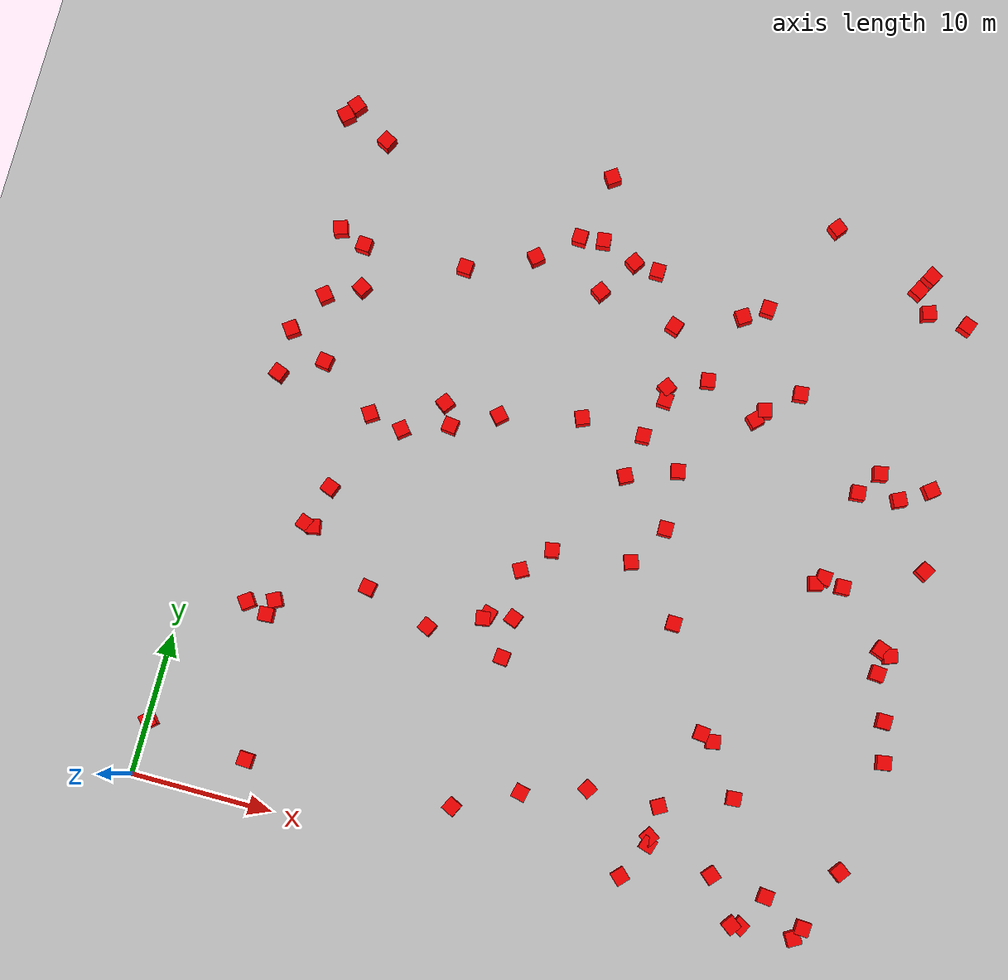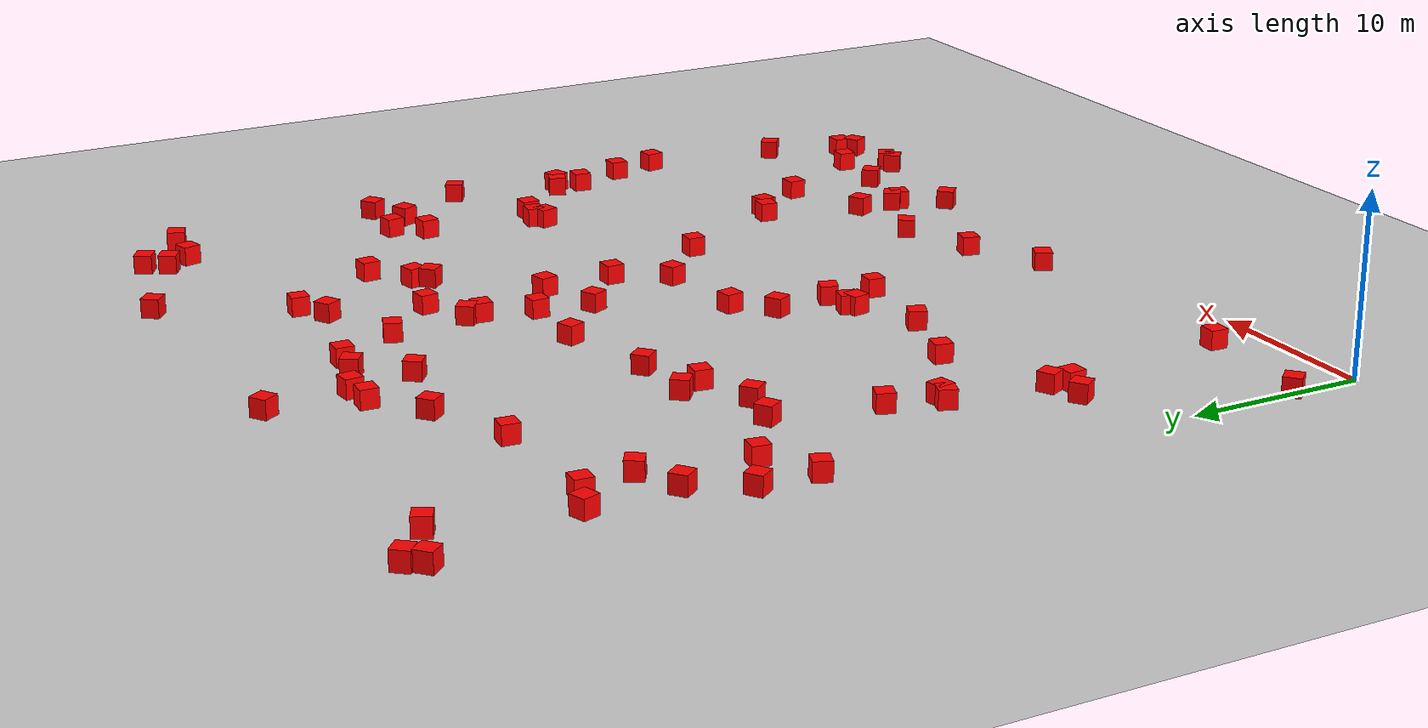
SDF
<sdf version="1.5">
 <world name="default">
  <light name="sun" type="directional">
   <pose>0 0 10 0 -0 0</pose>
   <diffuse>0.8 0.8 0.8 1</diffuse>
   <specular>0.2 0.2 0.2 1</specular>
   <attenuation>
    <range>1000</range>
    <constant>0.9</constant>
    <linear>0.01</linear>
    <quadratic>0.001</quadratic>
   </attenuation>
   <direction>0 0.5 -0.9</direction>
  </light>
  <light name="point_light" type="point">
   <pose>0 -0.377195 6.59868 0 -0 0</pose>
   <diffuse>0.784314 0.784314 0.784314 1</diffuse>
   <specular>0.0980392 0.0980392 0.0980392 1</specular>
   <attenuation>
    <range>50</range>
    <constant>0.8</constant>
    <linear>0</linear>
    <quadratic>0.001</quadratic>
   </attenuation>
   <cast_shadows>0</cast_shadows>
   <direction>0 0 -1</direction>
  </light>
  <include><uri>model://ground_plane</uri></include>
  <model name="pink_obstacle_0">
   <static>true</static>
   <link name="link">
    <visual name="visual">
     <geometry><box><size>1.000000 1.000000 2.000000</size></box></geometry>
     <material><ambient>1 0 0 1</ambient><diffuse>1 0 0 1</diffuse></material>
    </visual>
   </link>
   <pose>46.714055 0.924141 0.000000 0.000000 0.000000 0.515072</pose>
  </model>
  <model name="pink_obstacle_1">
   <static>true</static>
   <link name="link">
    <visual name="visual">
     <geometry><box><size>1.000000 1.000000 2.000000</size></box></geometry>
     <material><ambient>1 0 0 1</ambient><diffuse>1 0 0 1</diffuse></material>
    </visual>
   </link>
   <pose>3.766965 35.918104 0.000000 0.000000 0.000000 0.670244</pose>
  </model>
  <model name="pink_obstacle_2">
   <static>true</static>
   <link name="link">
    <visual name="visual">
     <geometry><box><size>1.000000 1.000000 2.000000</size></box></geometry>
     <material><ambient>1 0 0 1</ambient><diffuse>1 0 0 1</diffuse></material>
    </visual>
   </link>
   <pose>7.475500 19.732397 0.000000 0.000000 0.000000 0.172958</pose>
  </model>
  <model name="pink_obstacle_3">
   <static>true</static>
   <link name="link">
    <visual name="visual">
     <geometry><box><size>1.000000 1.000000 2.000000</size></box></geometry>
     <material><ambient>1 0 0 1</ambient><diffuse>1 0 0 1</diffuse></material>
    </visual>
   </link>
   <pose>28.218341 31.873527 0.000000 0.000000 0.000000 0.025634</pose>
  </model>
  <model name="pink_obstacle_4">
   <static>true</static>
   <link name="link">
    <visual name="visual">
     <geometry><box><size>1.000000 1.000000 2.000000</size></box></geometry>
     <material><ambient>1 0 0 1</ambient><diffuse>1 0 0 1</diffuse></material>
    </visual>
   </link>
   <pose>38.230350 37.607334 0.000000 0.000000 0.000000 0.091677</pose>
  </model>
  <model name="pink_obstacle_5">
   <static>true</static>
   <link name="link">
    <visual name="visual">
     <geometry><box><size>1.000000 1.000000 2.000000</size></box></geometry>
     <material><ambient>1 0 0 1</ambient><diffuse>1 0 0 1</diffuse></material>
    </visual>
   </link>
   <pose>40.298660 3.570914 0.000000 0.000000 0.000000 0.847894</pose>
  </model>
  <model name="pink_obstacle_6">
   <static>true</static>
   <link name="link">
    <visual name="visual">
     <geometry><box><size>1.000000 1.000000 2.000000</size></box></geometry>
     <material><ambient>1 0 0 1</ambient><diffuse>1 0 0 1</diffuse></material>
    </visual>
   </link>
   <pose>35.565850 4.997576 0.000000 0.000000 0.000000 0.971486</pose>
  </model>
  <model name="pink_obstacle_7">
   <static>true</static>
   <link name="link">
    <visual name="visual">
     <geometry><box><size>1.000000 1.000000 2.000000</size></box></geometry>
     <material><ambient>1 0 0 1</ambient><diffuse>1 0 0 1</diffuse></material>
    </visual>
   </link>
   <pose>48.721569 33.250506 0.000000 0.000000 0.000000 0.629780</pose>
  </model>
  <model name="pink_obstacle_8">
   <static>true</static>
   <link name="link">
    <visual name="visual">
     <geometry><box><size>1.000000 1.000000 2.000000</size></box></geometry>
     <material><ambient>1 0 0 1</ambient><diffuse>1 0 0 1</diffuse></material>
    </visual>
   </link>
   <pose>36.043508 35.787292 0.000000 0.000000 0.000000 0.249717</pose>
  </model>
  <model name="pink_obstacle_9">
   <static>true</static>
   <link name="link">
    <visual name="visual">
     <geometry><box><size>1.000000 1.000000 2.000000</size></box></geometry>
     <material><ambient>1 0 0 1</ambient><diffuse>1 0 0 1</diffuse></material>
    </visual>
   </link>
   <pose>11.618465 27.958165 0.000000 0.000000 0.000000 0.670215</pose>
  </model>
  <model name="pink_obstacle_10">
   <static>true</static>
   <link name="link">
    <visual name="visual">
     <geometry><box><size>1.000000 1.000000 2.000000</size></box></geometry>
     <material><ambient>1 0 0 1</ambient><diffuse>1 0 0 1</diffuse></material>
    </visual>
   </link>
   <pose>6.013086 12.966785 0.000000 0.000000 0.000000 0.048870</pose>
  </model>
  <model name="pink_obstacle_11">
   <static>true</static>
   <link name="link">
    <visual name="visual">
     <geometry><box><size>1.000000 1.000000 2.000000</size></box></geometry>
     <material><ambient>1 0 0 1</ambient><diffuse>1 0 0 1</diffuse></material>
    </visual>
   </link>
   <pose>43.800302 31.783755 0.000000 0.000000 0.000000 0.077478</pose>
  </model>
  <model name="pink_obstacle_12">
   <static>true</static>
   <link name="link">
    <visual name="visual">
     <geometry><box><size>1.000000 1.000000 2.000000</size></box></geometry>
     <material><ambient>1 0 0 1</ambient><diffuse>1 0 0 1</diffuse></material>
    </visual>
   </link>
   <pose>5.493710 40.161034 0.000000 0.000000 0.000000 1.498785</pose>
  </model>
  <model name="pink_obstacle_13">
   <static>true</static>
   <link name="link">
    <visual name="visual">
     <geometry><box><size>1.000000 1.000000 2.000000</size></box></geometry>
     <material><ambient>1 0 0 1</ambient><diffuse>1 0 0 1</diffuse></material>
    </visual>
   </link>
   <pose>48.748871 6.018786 0.000000 0.000000 0.000000 0.916541</pose>
  </model>
  <model name="pink_obstacle_14">
   <static>true</static>
   <link name="link">
    <visual name="visual">
     <geometry><box><size>1.000000 1.000000 2.000000</size></box></geometry>
     <material><ambient>1 0 0 1</ambient><diffuse>1 0 0 1</diffuse></material>
    </visual>
   </link>
   <pose>29.633983 22.997522 0.000000 0.000000 0.000000 0.311947</pose>
  </model>
  <model name="pink_obstacle_15">
   <static>true</static>
   <link name="link">
    <visual name="visual">
     <geometry><box><size>1.000000 1.000000 2.000000</size></box></geometry>
     <material><ambient>1 0 0 1</ambient><diffuse>1 0 0 1</diffuse></material>
    </visual>
   </link>
   <pose>6.186903 37.091109 0.000000 0.000000 0.000000 1.025067</pose>
  </model>
  <model name="pink_obstacle_16">
   <static>true</static>
   <link name="link">
    <visual name="visual">
     <geometry><box><size>1.000000 1.000000 2.000000</size></box></geometry>
     <material><ambient>1 0 0 1</ambient><diffuse>1 0 0 1</diffuse></material>
    </visual>
   </link>
   <pose>2.130829 29.661651 0.000000 0.000000 0.000000 1.212941</pose>
  </model>
  <model name="pink_obstacle_17">
   <static>true</static>
   <link name="link">
    <visual name="visual">
     <geometry><box><size>1.000000 1.000000 2.000000</size></box></geometry>
     <material><ambient>1 0 0 1</ambient><diffuse>1 0 0 1</diffuse></material>
    </visual>
   </link>
   <pose>48.469944 45.380719 0.000000 0.000000 0.000000 1.199917</pose>
  </model>
  <model name="pink_obstacle_18">
   <static>true</static>
   <link name="link">
    <visual name="visual">
     <geometry><box><size>1.000000 1.000000 2.000000</size></box></geometry>
     <material><ambient>1 0 0 1</ambient><diffuse>1 0 0 1</diffuse></material>
    </visual>
   </link>
   <pose>34.306627 1.921542 0.000000 0.000000 0.000000 0.805042</pose>
  </model>
  <model name="pink_obstacle_19">
   <static>true</static>
   <link name="link">
    <visual name="visual">
     <geometry><box><size>1.000000 1.000000 2.000000</size></box></geometry>
     <material><ambient>1 0 0 1</ambient><diffuse>1 0 0 1</diffuse></material>
    </visual>
   </link>
   <pose>24.086724 22.381701 0.000000 0.000000 0.000000 0.162172</pose>
  </model>
  <model name="pink_obstacle_20">
   <static>true</static>
   <link name="link">
    <visual name="visual">
     <geometry><box><size>1.000000 1.000000 2.000000</size></box></geometry>
     <material><ambient>1 0 0 1</ambient><diffuse>1 0 0 1</diffuse></material>
    </visual>
   </link>
   <pose>28.389633 40.057751 0.000000 0.000000 0.000000 1.239587</pose>
  </model>
  <model name="pink_obstacle_21">
   <static>true</static>
   <link name="link">
    <visual name="visual">
     <geometry><box><size>1.000000 1.000000 2.000000</size></box></geometry>
     <material><ambient>1 0 0 1</ambient><diffuse>1 0 0 1</diffuse></material>
    </visual>
   </link>
   <pose>31.377544 25.873694 0.000000 0.000000 0.000000 0.002540</pose>
  </model>
  <model name="pink_obstacle_22">
   <static>true</static>
   <link name="link">
    <visual name="visual">
     <geometry><box><size>1.000000 1.000000 2.000000</size></box></geometry>
     <material><ambient>1 0 0 1</ambient><diffuse>1 0 0 1</diffuse></material>
    </visual>
   </link>
   <pose>33.569751 19.589406 0.000000 0.000000 0.000000 1.543019</pose>
  </model>
  <model name="pink_obstacle_23">
   <static>true</static>
   <link name="link">
    <visual name="visual">
     <geometry><box><size>1.000000 1.000000 2.000000</size></box></geometry>
     <material><ambient>1 0 0 1</ambient><diffuse>1 0 0 1</diffuse></material>
    </visual>
   </link>
   <pose>9.189827 28.485367 0.000000 0.000000 0.000000 0.572823</pose>
  </model>
  <model name="pink_obstacle_24">
   <static>true</static>
   <link name="link">
    <visual name="visual">
     <geometry><box><size>1.000000 1.000000 2.000000</size></box></geometry>
     <material><ambient>1 0 0 1</ambient><diffuse>1 0 0 1</diffuse></material>
    </visual>
   </link>
   <pose>37.890776 49.964936 0.000000 0.000000 0.000000 0.902124</pose>
  </model>
  <model name="pink_obstacle_25">
   <static>true</static>
   <link name="link">
    <visual name="visual">
     <geometry><box><size>1.000000 1.000000 2.000000</size></box></geometry>
     <material><ambient>1 0 0 1</ambient><diffuse>1 0 0 1</diffuse></material>
    </visual>
   </link>
   <pose>21.954326 44.828901 0.000000 0.000000 0.000000 0.109536</pose>
  </model>
  <model name="pink_obstacle_26">
   <static>true</static>
   <link name="link">
    <visual name="visual">
     <geometry><box><size>1.000000 1.000000 2.000000</size></box></geometry>
     <material><ambient>1 0 0 1</ambient><diffuse>1 0 0 1</diffuse></material>
    </visual>
   </link>
   <pose>26.239358 43.642397 0.000000 0.000000 0.000000 1.543481</pose>
  </model>
  <model name="pink_obstacle_27">
   <static>true</static>
   <link name="link">
    <visual name="visual">
     <geometry><box><size>1.000000 1.000000 2.000000</size></box></geometry>
     <material><ambient>1 0 0 1</ambient><diffuse>1 0 0 1</diffuse></material>
    </visual>
   </link>
   <pose>34.528546 43.002833 0.000000 0.000000 0.000000 1.505570</pose>
  </model>
  <model name="pink_obstacle_28">
   <static>true</static>
   <link name="link">
    <visual name="visual">
     <geometry><box><size>1.000000 1.000000 2.000000</size></box></geometry>
     <material><ambient>1 0 0 1</ambient><diffuse>1 0 0 1</diffuse></material>
    </visual>
   </link>
   <pose>45.614633 45.600654 0.000000 0.000000 0.000000 0.271461</pose>
  </model>
  <model name="pink_obstacle_29">
   <static>true</static>
   <link name="link">
    <visual name="visual">
     <geometry><box><size>1.000000 1.000000 2.000000</size></box></geometry>
     <material><ambient>1 0 0 1</ambient><diffuse>1 0 0 1</diffuse></material>
    </visual>
   </link>
   <pose>38.213255 12.392197 0.000000 0.000000 0.000000 0.170657</pose>
  </model>
  <model name="pink_obstacle_30">
   <static>true</static>
   <link name="link">
    <visual name="visual">
     <geometry><box><size>1.000000 1.000000 2.000000</size></box></geometry>
     <material><ambient>1 0 0 1</ambient><diffuse>1 0 0 1</diffuse></material>
    </visual>
   </link>
   <pose>26.270959 5.646057 0.000000 0.000000 0.000000 1.343711</pose>
  </model>
  <model name="pink_obstacle_31">
   <static>true</static>
   <link name="link">
    <visual name="visual">
     <geometry><box><size>1.000000 1.000000 2.000000</size></box></geometry>
     <material><ambient>1 0 0 1</ambient><diffuse>1 0 0 1</diffuse></material>
    </visual>
   </link>
   <pose>44.995047 33.497483 0.000000 0.000000 0.000000 0.171649</pose>
  </model>
  <model name="pink_obstacle_32">
   <static>true</static>
   <link name="link">
    <visual name="visual">
     <geometry><box><size>1.000000 1.000000 2.000000</size></box></geometry>
     <material><ambient>1 0 0 1</ambient><diffuse>1 0 0 1</diffuse></material>
    </visual>
   </link>
   <pose>30.673199 7.057635 0.000000 0.000000 0.000000 1.008725</pose>
  </model>
  <model name="pink_obstacle_33">
   <static>true</static>
   <link name="link">
    <visual name="visual">
     <geometry><box><size>1.000000 1.000000 2.000000</size></box></geometry>
     <material><ambient>1 0 0 1</ambient><diffuse>1 0 0 1</diffuse></material>
    </visual>
   </link>
   <pose>14.882845 29.099922 0.000000 0.000000 0.000000 1.444165</pose>
  </model>
  <model name="pink_obstacle_34">
   <static>true</static>
   <link name="link">
    <visual name="visual">
     <geometry><box><size>1.000000 1.000000 2.000000</size></box></geometry>
     <material><ambient>1 0 0 1</ambient><diffuse>1 0 0 1</diffuse></material>
    </visual>
   </link>
   <pose>44.245102 3.132169 0.000000 0.000000 0.000000 1.464915</pose>
  </model>
  <model name="pink_obstacle_35">
   <static>true</static>
   <link name="link">
    <visual name="visual">
     <geometry><box><size>1.000000 1.000000 2.000000</size></box></geometry>
     <material><ambient>1 0 0 1</ambient><diffuse>1 0 0 1</diffuse></material>
    </visual>
   </link>
   <pose>48.622352 21.224300 0.000000 0.000000 0.000000 0.298839</pose>
  </model>
  <model name="pink_obstacle_36">
   <static>true</static>
   <link name="link">
    <visual name="visual">
     <geometry><box><size>1.000000 1.000000 2.000000</size></box></geometry>
     <material><ambient>1 0 0 1</ambient><diffuse>1 0 0 1</diffuse></material>
    </visual>
   </link>
   <pose>0.157791 3.839870 0.000000 0.000000 0.000000 0.723013</pose>
  </model>
  <model name="pink_obstacle_37">
   <static>true</static>
   <link name="link">
    <visual name="visual">
     <geometry><box><size>1.000000 1.000000 2.000000</size></box></geometry>
     <material><ambient>1 0 0 1</ambient><diffuse>1 0 0 1</diffuse></material>
    </visual>
   </link>
   <pose>35.558248 34.979017 0.000000 0.000000 0.000000 0.773034</pose>
  </model>
  <model name="pink_obstacle_38">
   <static>true</static>
   <link name="link">
    <visual name="visual">
     <geometry><box><size>1.000000 1.000000 2.000000</size></box></geometry>
     <material><ambient>1 0 0 1</ambient><diffuse>1 0 0 1</diffuse></material>
    </visual>
   </link>
   <pose>37.311109 12.733483 0.000000 0.000000 0.000000 1.468015</pose>
  </model>
  <model name="pink_obstacle_39">
   <static>true</static>
   <link name="link">
    <visual name="visual">
     <geometry><box><size>1.000000 1.000000 2.000000</size></box></geometry>
     <material><ambient>1 0 0 1</ambient><diffuse>1 0 0 1</diffuse></material>
    </visual>
   </link>
   <pose>17.578345 42.427796 0.000000 0.000000 0.000000 0.695136</pose>
  </model>
  <model name="pink_obstacle_40">
   <static>true</static>
   <link name="link">
    <visual name="visual">
     <geometry><box><size>1.000000 1.000000 2.000000</size></box></geometry>
     <material><ambient>1 0 0 1</ambient><diffuse>1 0 0 1</diffuse></material>
    </visual>
   </link>
   <pose>7.890580 22.698709 0.000000 0.000000 0.000000 1.200527</pose>
  </model>
  <model name="pink_obstacle_41">
   <static>true</static>
   <link name="link">
    <visual name="visual">
     <geometry><box><size>1.000000 1.000000 2.000000</size></box></geometry>
     <material><ambient>1 0 0 1</ambient><diffuse>1 0 0 1</diffuse></material>
    </visual>
   </link>
   <pose>49.275049 16.746077 0.000000 0.000000 0.000000 1.556272</pose>
  </model>
  <model name="pink_obstacle_42">
   <static>true</static>
   <link name="link">
    <visual name="visual">
     <geometry><box><size>1.000000 1.000000 2.000000</size></box></geometry>
     <material><ambient>1 0 0 1</ambient><diffuse>1 0 0 1</diffuse></material>
    </visual>
   </link>
   <pose>32.931658 41.972014 0.000000 0.000000 0.000000 0.552367</pose>
  </model>
  <model name="pink_obstacle_43">
   <static>true</static>
   <link name="link">
    <visual name="visual">
     <geometry><box><size>1.000000 1.000000 2.000000</size></box></geometry>
     <material><ambient>1 0 0 1</ambient><diffuse>1 0 0 1</diffuse></material>
    </visual>
   </link>
   <pose>21.391866 49.494206 0.000000 0.000000 0.000000 0.591893</pose>
  </model>
  <model name="pink_obstacle_44">
   <static>true</static>
   <link name="link">
    <visual name="visual">
     <geometry><box><size>1.000000 1.000000 2.000000</size></box></geometry>
     <material><ambient>1 0 0 1</ambient><diffuse>1 0 0 1</diffuse></material>
    </visual>
   </link>
   <pose>18.029628 30.663246 0.000000 0.000000 0.000000 0.733205</pose>
  </model>
  <model name="pink_obstacle_45">
   <static>true</static>
   <link name="link">
    <visual name="visual">
     <geometry><box><size>1.000000 1.000000 2.000000</size></box></geometry>
     <material><ambient>1 0 0 1</ambient><diffuse>1 0 0 1</diffuse></material>
    </visual>
   </link>
   <pose>43.009513 0.783422 0.000000 0.000000 0.000000 1.050593</pose>
  </model>
  <model name="pink_obstacle_46">
   <static>true</static>
   <link name="link">
    <visual name="visual">
     <geometry><box><size>1.000000 1.000000 2.000000</size></box></geometry>
     <material><ambient>1 0 0 1</ambient><diffuse>1 0 0 1</diffuse></material>
    </visual>
   </link>
   <pose>31.655242 36.864281 0.000000 0.000000 0.000000 0.145395</pose>
  </model>
  <model name="pink_obstacle_47">
   <static>true</static>
   <link name="link">
    <visual name="visual">
     <geometry><box><size>1.000000 1.000000 2.000000</size></box></geometry>
     <material><ambient>1 0 0 1</ambient><diffuse>1 0 0 1</diffuse></material>
    </visual>
   </link>
   <pose>14.123667 30.552424 0.000000 0.000000 0.000000 0.915147</pose>
  </model>
  <model name="pink_obstacle_48">
   <static>true</static>
   <link name="link">
    <visual name="visual">
     <geometry><box><size>1.000000 1.000000 2.000000</size></box></geometry>
     <material><ambient>1 0 0 1</ambient><diffuse>1 0 0 1</diffuse></material>
    </visual>
   </link>
   <pose>35.624526 4.490483 0.000000 0.000000 0.000000 1.271574</pose>
  </model>
  <model name="pink_obstacle_49">
   <static>true</static>
   <link name="link">
    <visual name="visual">
     <geometry><box><size>1.000000 1.000000 2.000000</size></box></geometry>
     <material><ambient>1 0 0 1</ambient><diffuse>1 0 0 1</diffuse></material>
    </visual>
   </link>
   <pose>2.148447 32.935214 0.000000 0.000000 0.000000 0.612180</pose>
  </model>
  <model name="pink_obstacle_50">
   <static>true</static>
   <link name="link">
    <visual name="visual">
     <geometry><box><size>1.000000 1.000000 2.000000</size></box></geometry>
     <material><ambient>1 0 0 1</ambient><diffuse>1 0 0 1</diffuse></material>
    </visual>
   </link>
   <pose>42.441796 24.848932 0.000000 0.000000 0.000000 0.249806</pose>
  </model>
  <model name="pink_obstacle_51">
   <static>true</static>
   <link name="link">
    <visual name="visual">
     <geometry><box><size>1.000000 1.000000 2.000000</size></box></geometry>
     <material><ambient>1 0 0 1</ambient><diffuse>1 0 0 1</diffuse></material>
    </visual>
   </link>
   <pose>46.694666 32.026817 0.000000 0.000000 0.000000 0.428320</pose>
  </model>
  <model name="pink_obstacle_52">
   <static>true</static>
   <link name="link">
    <visual name="visual">
     <geometry><box><size>1.000000 1.000000 2.000000</size></box></geometry>
     <material><ambient>1 0 0 1</ambient><diffuse>1 0 0 1</diffuse></material>
    </visual>
   </link>
   <pose>2.228616 49.973922 0.000000 0.000000 0.000000 0.877901</pose>
  </model>
  <model name="pink_obstacle_53">
   <static>true</static>
   <link name="link">
    <visual name="visual">
     <geometry><box><size>1.000000 1.000000 2.000000</size></box></geometry>
     <material><ambient>1 0 0 1</ambient><diffuse>1 0 0 1</diffuse></material>
    </visual>
   </link>
   <pose>5.076823 31.284455 0.000000 0.000000 0.000000 1.422082</pose>
  </model>
  <model name="pink_obstacle_54">
   <static>true</static>
   <link name="link">
    <visual name="visual">
     <geometry><box><size>1.000000 1.000000 2.000000</size></box></geometry>
     <material><ambient>1 0 0 1</ambient><diffuse>1 0 0 1</diffuse></material>
    </visual>
   </link>
   <pose>29.075158 34.746290 0.000000 0.000000 0.000000 1.487773</pose>
  </model>
  <model name="pink_obstacle_55">
   <static>true</static>
   <link name="link">
    <visual name="visual">
     <geometry><box><size>1.000000 1.000000 2.000000</size></box></geometry>
     <material><ambient>1 0 0 1</ambient><diffuse>1 0 0 1</diffuse></material>
    </visual>
   </link>
   <pose>22.684777 41.157548 0.000000 0.000000 0.000000 0.947046</pose>
  </model>
  <model name="pink_obstacle_56">
   <static>true</static>
   <link name="link">
    <visual name="visual">
     <geometry><box><size>1.000000 1.000000 2.000000</size></box></geometry>
     <material><ambient>1 0 0 1</ambient><diffuse>1 0 0 1</diffuse></material>
    </visual>
   </link>
   <pose>12.340411 16.566231 0.000000 0.000000 0.000000 1.392084</pose>
  </model>
  <model name="pink_obstacle_57">
   <static>true</static>
   <link name="link">
    <visual name="visual">
     <geometry><box><size>1.000000 1.000000 2.000000</size></box></geometry>
     <material><ambient>1 0 0 1</ambient><diffuse>1 0 0 1</diffuse></material>
    </visual>
   </link>
   <pose>5.016942 47.967763 0.000000 0.000000 0.000000 1.103176</pose>
  </model>
  <model name="pink_obstacle_58">
   <static>true</static>
   <link name="link">
    <visual name="visual">
     <geometry><box><size>1.000000 1.000000 2.000000</size></box></geometry>
     <material><ambient>1 0 0 1</ambient><diffuse>1 0 0 1</diffuse></material>
    </visual>
   </link>
   <pose>6.889982 19.802492 0.000000 0.000000 0.000000 1.227516</pose>
  </model>
  <model name="pink_obstacle_59">
   <static>true</static>
   <link name="link">
    <visual name="visual">
     <geometry><box><size>1.000000 1.000000 2.000000</size></box></geometry>
     <material><ambient>1 0 0 1</ambient><diffuse>1 0 0 1</diffuse></material>
    </visual>
   </link>
   <pose>40.533601 8.990969 0.000000 0.000000 0.000000 0.069204</pose>
  </model>
  <model name="pink_obstacle_60">
   <static>true</static>
   <link name="link">
    <visual name="visual">
     <geometry><box><size>1.000000 1.000000 2.000000</size></box></geometry>
     <material><ambient>1 0 0 1</ambient><diffuse>1 0 0 1</diffuse></material>
    </visual>
   </link>
   <pose>22.639239 14.276116 0.000000 0.000000 0.000000 1.467688</pose>
  </model>
  <model name="pink_obstacle_61">
   <static>true</static>
   <link name="link">
    <visual name="visual">
     <geometry><box><size>1.000000 1.000000 2.000000</size></box></geometry>
     <material><ambient>1 0 0 1</ambient><diffuse>1 0 0 1</diffuse></material>
    </visual>
   </link>
   <pose>47.919360 21.495955 0.000000 0.000000 0.000000 1.208888</pose>
  </model>
  <model name="pink_obstacle_62">
   <static>true</static>
   <link name="link">
    <visual name="visual">
     <geometry><box><size>1.000000 1.000000 2.000000</size></box></geometry>
     <material><ambient>1 0 0 1</ambient><diffuse>1 0 0 1</diffuse></material>
    </visual>
   </link>
   <pose>6.314862 14.063042 0.000000 0.000000 0.000000 0.470878</pose>
  </model>
  <model name="pink_obstacle_63">
   <static>true</static>
   <link name="link">
    <visual name="visual">
     <geometry><box><size>1.000000 1.000000 2.000000</size></box></geometry>
     <material><ambient>1 0 0 1</ambient><diffuse>1 0 0 1</diffuse></material>
    </visual>
   </link>
   <pose>45.221972 48.220013 0.000000 0.000000 0.000000 1.045637</pose>
  </model>
  <model name="pink_obstacle_64">
   <static>true</static>
   <link name="link">
    <visual name="visual">
     <geometry><box><size>1.000000 1.000000 2.000000</size></box></geometry>
     <material><ambient>1 0 0 1</ambient><diffuse>1 0 0 1</diffuse></material>
    </visual>
   </link>
   <pose>47.178215 1.724725 0.000000 0.000000 0.000000 1.505804</pose>
  </model>
  <model name="pink_obstacle_65">
   <static>true</static>
   <link name="link">
    <visual name="visual">
     <geometry><box><size>1.000000 1.000000 2.000000</size></box></geometry>
     <material><ambient>1 0 0 1</ambient><diffuse>1 0 0 1</diffuse></material>
    </visual>
   </link>
   <pose>44.575419 47.018364 0.000000 0.000000 0.000000 1.060247</pose>
  </model>
  <model name="pink_obstacle_66">
   <static>true</static>
   <link name="link">
    <visual name="visual">
     <geometry><box><size>1.000000 1.000000 2.000000</size></box></geometry>
     <material><ambient>1 0 0 1</ambient><diffuse>1 0 0 1</diffuse></material>
    </visual>
   </link>
   <pose>28.963638 35.628640 0.000000 0.000000 0.000000 0.936516</pose>
  </model>
  <model name="pink_obstacle_67">
   <static>true</static>
   <link name="link">
    <visual name="visual">
     <geometry><box><size>1.000000 1.000000 2.000000</size></box></geometry>
     <material><ambient>1 0 0 1</ambient><diffuse>1 0 0 1</diffuse></material>
    </visual>
   </link>
   <pose>27.705495 28.773049 0.000000 0.000000 0.000000 0.468792</pose>
  </model>
  <model name="pink_obstacle_68">
   <static>true</static>
   <link name="link">
    <visual name="visual">
     <geometry><box><size>1.000000 1.000000 2.000000</size></box></geometry>
     <material><ambient>1 0 0 1</ambient><diffuse>1 0 0 1</diffuse></material>
    </visual>
   </link>
   <pose>7.399809 2.984617 0.000000 0.000000 0.000000 1.520833</pose>
  </model>
  <model name="pink_obstacle_69">
   <static>true</static>
   <link name="link">
    <visual name="visual">
     <geometry><box><size>1.000000 1.000000 2.000000</size></box></geometry>
     <material><ambient>1 0 0 1</ambient><diffuse>1 0 0 1</diffuse></material>
    </visual>
   </link>
   <pose>20.948933 16.931900 0.000000 0.000000 0.000000 1.295354</pose>
  </model>
  <model name="pink_obstacle_70">
   <static>true</static>
   <link name="link">
    <visual name="visual">
     <geometry><box><size>1.000000 1.000000 2.000000</size></box></geometry>
     <material><ambient>1 0 0 1</ambient><diffuse>1 0 0 1</diffuse></material>
    </visual>
   </link>
   <pose>42.434484 0.684296 0.000000 0.000000 0.000000 0.932819</pose>
  </model>
  <model name="pink_obstacle_71">
   <static>true</static>
   <link name="link">
    <visual name="visual">
     <geometry><box><size>1.000000 1.000000 2.000000</size></box></geometry>
     <material><ambient>1 0 0 1</ambient><diffuse>1 0 0 1</diffuse></material>
    </visual>
   </link>
   <pose>21.972365 3.522357 0.000000 0.000000 0.000000 1.115094</pose>
  </model>
  <model name="pink_obstacle_72">
   <static>true</static>
   <link name="link">
    <visual name="visual">
     <geometry><box><size>1.000000 1.000000 2.000000</size></box></geometry>
     <material><ambient>1 0 0 1</ambient><diffuse>1 0 0 1</diffuse></material>
    </visual>
   </link>
   <pose>20.669353 16.570001 0.000000 0.000000 0.000000 0.169968</pose>
  </model>
  <model name="pink_obstacle_73">
   <static>true</static>
   <link name="link">
    <visual name="visual">
     <geometry><box><size>1.000000 1.000000 2.000000</size></box></geometry>
     <material><ambient>1 0 0 1</ambient><diffuse>1 0 0 1</diffuse></material>
    </visual>
   </link>
   <pose>22.314637 20.483074 0.000000 0.000000 0.000000 0.503202</pose>
  </model>
  <model name="pink_obstacle_74">
   <static>true</static>
   <link name="link">
    <visual name="visual">
     <geometry><box><size>1.000000 1.000000 2.000000</size></box></geometry>
     <material><ambient>1 0 0 1</ambient><diffuse>1 0 0 1</diffuse></material>
    </visual>
   </link>
   <pose>49.596477 27.585826 0.000000 0.000000 0.000000 1.037128</pose>
  </model>
  <model name="pink_obstacle_75">
   <static>true</static>
   <link name="link">
    <visual name="visual">
     <geometry><box><size>1.000000 1.000000 2.000000</size></box></geometry>
     <material><ambient>1 0 0 1</ambient><diffuse>1 0 0 1</diffuse></material>
    </visual>
   </link>
   <pose>35.682502 7.174922 0.000000 0.000000 0.000000 0.496081</pose>
  </model>
  <model name="pink_obstacle_76">
   <static>true</static>
   <link name="link">
    <visual name="visual">
     <geometry><box><size>1.000000 1.000000 2.000000</size></box></geometry>
     <material><ambient>1 0 0 1</ambient><diffuse>1 0 0 1</diffuse></material>
    </visual>
   </link>
   <pose>23.734508 32.006437 0.000000 0.000000 0.000000 0.382874</pose>
  </model>
  <model name="pink_obstacle_77">
   <static>true</static>
   <link name="link">
    <visual name="visual">
     <geometry><box><size>1.000000 1.000000 2.000000</size></box></geometry>
     <material><ambient>1 0 0 1</ambient><diffuse>1 0 0 1</diffuse></material>
    </visual>
   </link>
   <pose>22.710639 17.091873 0.000000 0.000000 0.000000 1.195589</pose>
  </model>
  <model name="pink_obstacle_78">
   <static>true</static>
   <link name="link">
    <visual name="visual">
     <geometry><box><size>1.000000 1.000000 2.000000</size></box></geometry>
     <material><ambient>1 0 0 1</ambient><diffuse>1 0 0 1</diffuse></material>
    </visual>
   </link>
   <pose>3.549062 40.894857 0.000000 0.000000 0.000000 0.327225</pose>
  </model>
  <model name="pink_obstacle_79">
   <static>true</static>
   <link name="link">
    <visual name="visual">
     <geometry><box><size>1.000000 1.000000 2.000000</size></box></geometry>
     <material><ambient>1 0 0 1</ambient><diffuse>1 0 0 1</diffuse></material>
    </visual>
   </link>
   <pose>12.902276 40.416557 0.000000 0.000000 0.000000 1.496644</pose>
  </model>
  <model name="pink_obstacle_80">
   <static>true</static>
   <link name="link">
    <visual name="visual">
     <geometry><box><size>1.000000 1.000000 2.000000</size></box></geometry>
     <material><ambient>1 0 0 1</ambient><diffuse>1 0 0 1</diffuse></material>
    </visual>
   </link>
   <pose>42.911288 25.352700 0.000000 0.000000 0.000000 1.487911</pose>
  </model>
  <model name="pink_obstacle_81">
   <static>true</static>
   <link name="link">
    <visual name="visual">
     <geometry><box><size>1.000000 1.000000 2.000000</size></box></geometry>
     <material><ambient>1 0 0 1</ambient><diffuse>1 0 0 1</diffuse></material>
    </visual>
   </link>
   <pose>4.468319 13.500847 0.000000 0.000000 0.000000 0.617324</pose>
  </model>
  <model name="pink_obstacle_82">
   <static>true</static>
   <link name="link">
    <visual name="visual">
     <geometry><box><size>1.000000 1.000000 2.000000</size></box></geometry>
     <material><ambient>1 0 0 1</ambient><diffuse>1 0 0 1</diffuse></material>
    </visual>
   </link>
   <pose>31.213095 30.040906 0.000000 0.000000 0.000000 0.212151</pose>
  </model>
  <model name="pink_obstacle_83">
   <static>true</static>
   <link name="link">
    <visual name="visual">
     <geometry><box><size>1.000000 1.000000 2.000000</size></box></geometry>
     <material><ambient>1 0 0 1</ambient><diffuse>1 0 0 1</diffuse></material>
    </visual>
   </link>
   <pose>1.661477 49.101641 0.000000 0.000000 0.000000 0.733640</pose>
  </model>
  <model name="pink_obstacle_84">
   <static>true</static>
   <link name="link">
    <visual name="visual">
     <geometry><box><size>1.000000 1.000000 2.000000</size></box></geometry>
     <material><ambient>1 0 0 1</ambient><diffuse>1 0 0 1</diffuse></material>
    </visual>
   </link>
   <pose>44.332322 25.063218 0.000000 0.000000 0.000000 0.015285</pose>
  </model>
  <model name="pink_obstacle_85">
   <static>true</static>
   <link name="link">
    <visual name="visual">
     <geometry><box><size>1.000000 1.000000 2.000000</size></box></geometry>
     <material><ambient>1 0 0 1</ambient><diffuse>1 0 0 1</diffuse></material>
    </visual>
   </link>
   <pose>20.250692 44.642433 0.000000 0.000000 0.000000 1.529957</pose>
  </model>
  <model name="pink_obstacle_86">
   <static>true</static>
   <link name="link">
    <visual name="visual">
     <geometry><box><size>1.000000 1.000000 2.000000</size></box></geometry>
     <material><ambient>1 0 0 1</ambient><diffuse>1 0 0 1</diffuse></material>
    </visual>
   </link>
   <pose>48.087483 19.835816 0.000000 0.000000 0.000000 1.484623</pose>
  </model>
  <model name="pink_obstacle_87">
   <static>true</static>
   <link name="link">
    <visual name="visual">
     <geometry><box><size>1.000000 1.000000 2.000000</size></box></geometry>
     <material><ambient>1 0 0 1</ambient><diffuse>1 0 0 1</diffuse></material>
    </visual>
   </link>
   <pose>17.074215 15.009367 0.000000 0.000000 0.000000 1.136625</pose>
  </model>
  <model name="pink_obstacle_88">
   <static>true</static>
   <link name="link">
    <visual name="visual">
     <geometry><box><size>1.000000 1.000000 2.000000</size></box></geometry>
     <material><ambient>1 0 0 1</ambient><diffuse>1 0 0 1</diffuse></material>
    </visual>
   </link>
   <pose>49.916037 13.990475 0.000000 0.000000 0.000000 0.141675</pose>
  </model>
  <model name="pink_obstacle_89">
   <static>true</static>
   <link name="link">
    <visual name="visual">
     <geometry><box><size>1.000000 1.000000 2.000000</size></box></geometry>
     <material><ambient>1 0 0 1</ambient><diffuse>1 0 0 1</diffuse></material>
    </visual>
   </link>
   <pose>24.496072 43.830662 0.000000 0.000000 0.000000 0.963306</pose>
  </model>
 </world>
</sdf>
